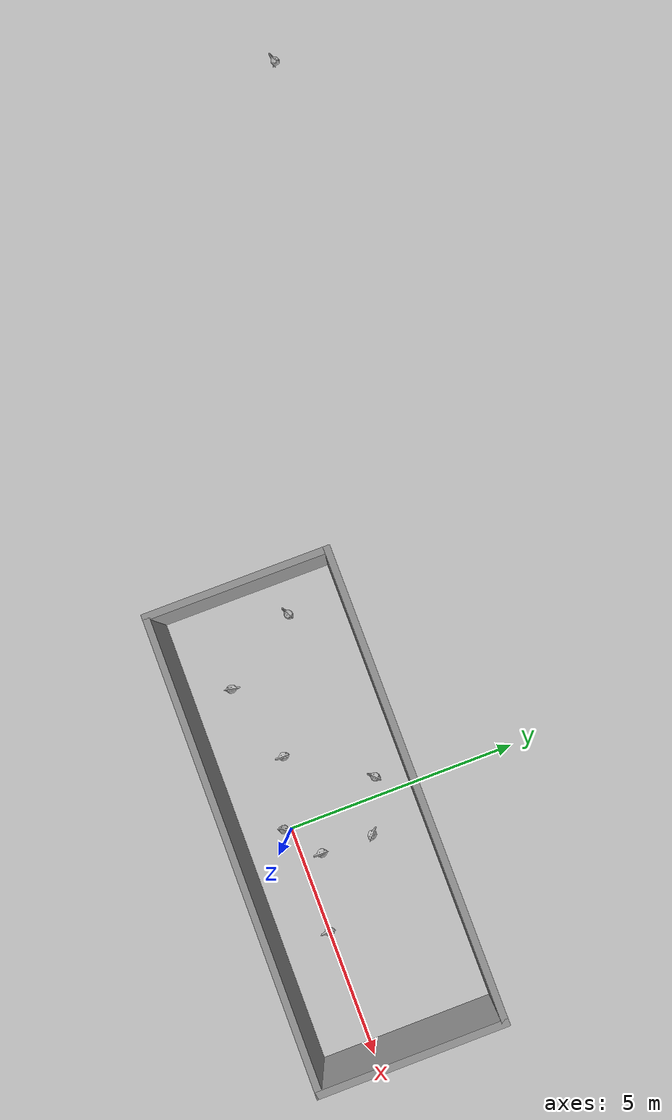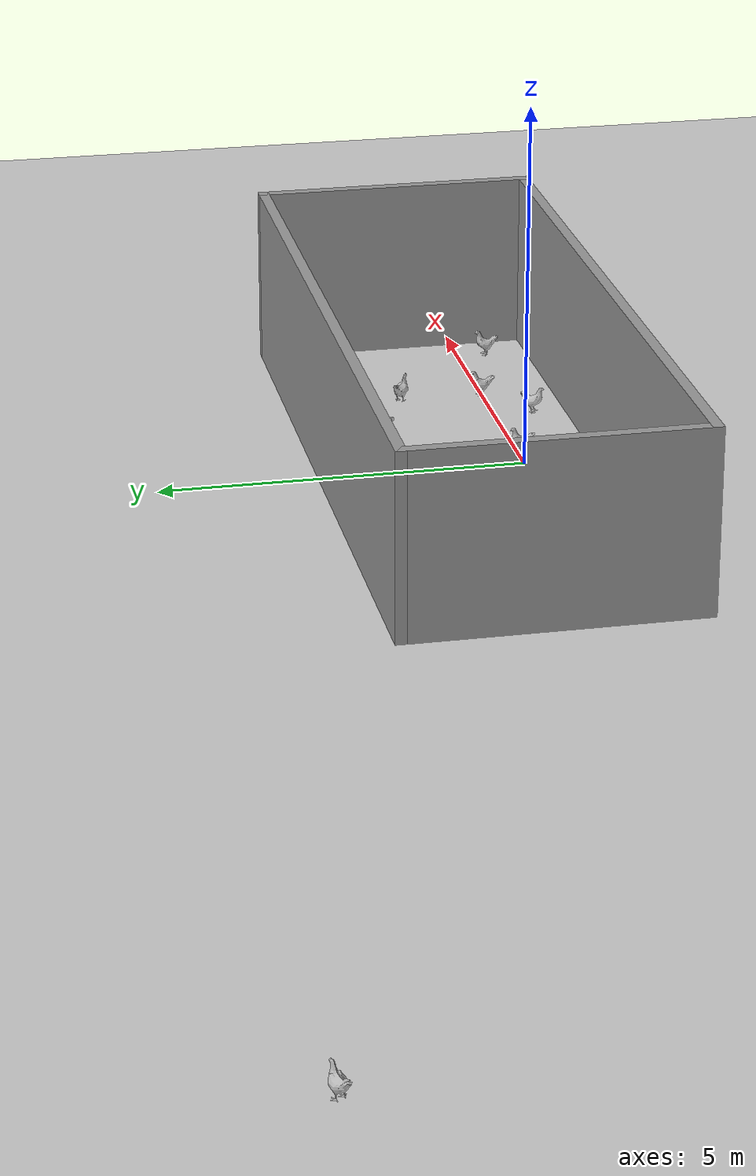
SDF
<sdf version="1.7">
 <world name="default">
  <model name="ground_plane">
   <static>1</static>
   <link name="link">
    <collision name="collision">
     <geometry><plane><normal>0 0 1</normal><size>100 100</size></plane></geometry>
     <surface><friction><ode><mu>100</mu><mu2>50</mu2></ode></friction></surface>
    </collision>
    <visual name="visual">
     <cast_shadows>0</cast_shadows>
     <geometry><plane><normal>0 0 1</normal><size>100 100</size></plane></geometry>
     <material>
      <script><uri>file://media/materials/scripts/gazebo.material</uri><name>Gazebo/Grey</name></script>
     </material>
    </visual>
   </link>
  </model>
  <light name="sun" type="directional">
   <pose>0 0 10 0 -0 0</pose>
   <diffuse>0.8 0.8 0.8 1</diffuse>
   <specular>0.2 0.2 0.2 1</specular>
   <attenuation>
    <range>1000</range>
    <constant>0.9</constant>
    <linear>0.01</linear>
    <quadratic>0.001</quadratic>
   </attenuation>
   <direction>-0.5 0.1 -0.9</direction>
   <spot><inner_angle>0</inner_angle><outer_angle>0</outer_angle><falloff>0</falloff></spot>
  </light>
  <gravity>0 0 -9.8</gravity>
  <magnetic_field>6e-06 2.3e-05 -4.2e-05</magnetic_field>
  <atmosphere type="adiabatic"/>
  <physics type="ode">
   <max_step_size>0.001</max_step_size>
   <real_time_factor>1</real_time_factor>
   <real_time_update_rate>1000</real_time_update_rate>
  </physics>
  <scene><ambient>0.4 0.4 0.4 1</ambient><background>0.7 0.7 0.7 1</background><shadows>1</shadows></scene>
  <audio><device>default</device></audio>
  <spherical_coordinates>
   <surface_model>EARTH_WGS84</surface_model>
   <latitude_deg>0</latitude_deg>
   <longitude_deg>0</longitude_deg>
   <elevation>0</elevation>
   <heading_deg>0</heading_deg>
  </spherical_coordinates>
  <model name="Stall4x10">
   <pose>1.16004 0.83872 0 0 -0 0</pose>
   <link name="Wall_6">
    <collision name="Wall_6_Collision">
     <geometry><box><size>4 0.15 2.5</size></box></geometry>
     <pose>0 0 1.25 0 -0 0</pose>
    </collision>
    <visual name="Wall_6_Visual">
     <pose>0 0 1.25 0 -0 0</pose>
     <geometry><box><size>4 0.15 2.5</size></box></geometry>
     <material>
      <script><uri>file://media/materials/scripts/gazebo.material</uri><name>Gazebo/Grey</name></script>
      <ambient>1 1 1 1</ambient>
     </material>
     <meta><layer>0</layer></meta>
    </visual>
    <pose>-6.2376 -0 0 0 -0 -1.5708</pose>
   </link>
   <link name="Wall_7">
    <collision name="Wall_7_Collision">
     <geometry><box><size>10 0.15 2.5</size></box></geometry>
     <pose>0 0 1.25 0 -0 0</pose>
    </collision>
    <visual name="Wall_7_Visual">
     <pose>0 0 1.25 0 -0 0</pose>
     <geometry><box><size>10 0.15 2.5</size></box></geometry>
     <material>
      <script><uri>file://media/materials/scripts/gazebo.material</uri><name>Gazebo/Grey</name></script>
      <ambient>1 1 1 1</ambient>
     </material>
     <meta><layer>0</layer></meta>
    </visual>
    <pose>-1.3126 -1.925 0 0 -0 0</pose>
   </link>
   <link name="Wall_8">
    <collision name="Wall_8_Collision">
     <geometry><box><size>4 0.15 2.5</size></box></geometry>
     <pose>0 0 1.25 0 -0 0</pose>
    </collision>
    <visual name="Wall_8_Visual">
     <pose>0 0 1.25 0 -0 0</pose>
     <geometry><box><size>4 0.15 2.5</size></box></geometry>
     <material>
      <script><uri>file://media/materials/scripts/gazebo.material</uri><name>Gazebo/Grey</name></script>
      <ambient>1 1 1 1</ambient>
     </material>
     <meta><layer>0</layer></meta>
    </visual>
    <pose>3.6124 -0 0 0 -0 1.5708</pose>
   </link>
   <link name="Wall_9">
    <collision name="Wall_9_Collision">
     <geometry><box><size>10 0.15 2.5</size></box></geometry>
     <pose>0 0 1.25 0 -0 0</pose>
    </collision>
    <visual name="Wall_9_Visual">
     <pose>0 0 1.25 0 -0 0</pose>
     <geometry><box><size>10 0.15 2.5</size></box></geometry>
     <material>
      <script><uri>file://media/materials/scripts/gazebo.material</uri><name>Gazebo/Grey</name></script>
      <ambient>1 1 1 1</ambient>
     </material>
     <meta><layer>0</layer></meta>
    </visual>
    <pose>-1.3126 1.925 0 0 -0 3.14159</pose>
   </link>
   <static>1</static>
  </model>
  <model name="Chicken">
   <static>1</static>
   <link name="link">
    <collision name="collision">
     <geometry><cylinder><radius>50</radius><length>50</length></cylinder></geometry>
    </collision>
    <visual name="visual"><geometry><mesh><uri>model://Chicken/meshes/Chicken.dae</uri></mesh></geometry></visual>
   </link>
   <pose>2.16393 0.019569 0.804608 0 -0 0</pose>
  </model>
  <model name="Chicken_0">
   <static>1</static>
   <link name="link">
    <collision name="collision">
     <geometry><cylinder><radius>50</radius><length>50</length></cylinder></geometry>
    </collision>
    <visual name="visual"><geometry><mesh><uri>model://Chicken/meshes/Chicken.dae</uri></mesh></geometry></visual>
   </link>
   <pose>-0.486125 2.01873 0.802451 0 0 -0.772379</pose>
  </model>
  <model name="Chicken_1">
   <static>1</static>
   <link name="link">
    <collision name="collision">
     <geometry><cylinder><radius>50</radius><length>50</length></cylinder></geometry>
    </collision>
    <visual name="visual"><geometry><mesh><uri>model://Chicken/meshes/Chicken.dae</uri></mesh></geometry></visual>
   </link>
   <pose>-3.18201 -0.046634 0.817456 0 -0 2.96983</pose>
  </model>
  <model name="Chicken_2">
   <static>1</static>
   <link name="link">
    <collision name="collision">
     <geometry><cylinder><radius>50</radius><length>50</length></cylinder></geometry>
    </collision>
    <visual name="visual"><geometry><mesh><uri>model://Chicken/meshes/Chicken.dae</uri></mesh></geometry></visual>
   </link>
   <pose>-1.50862 0.381596 0.826145 0 -0 0</pose>
  </model>
  <model name="Chicken_3">
   <static>1</static>
   <link name="link">
    <collision name="collision">
     <geometry><cylinder><radius>50</radius><length>50</length></cylinder></geometry>
    </collision>
    <visual name="visual"><geometry><mesh><uri>model://Chicken/meshes/Chicken.dae</uri></mesh></geometry></visual>
   </link>
   <pose>-0.072815 -0.038557 0.814274 0 -0 2.57247</pose>
  </model>
  <model name="Chicken_4">
   <static>1</static>
   <link name="link">
    <collision name="collision">
     <geometry><cylinder><radius>50</radius><length>50</length></cylinder></geometry>
    </collision>
    <visual name="visual"><geometry><mesh><uri>model://Chicken/meshes/Chicken.dae</uri></mesh></geometry></visual>
   </link>
   <pose>0.621536 0.429611 0.816262 0 -0 0</pose>
  </model>
  <model name="Chicken_5">
   <static>1</static>
   <link name="link">
    <collision name="collision">
     <geometry><cylinder><radius>50</radius><length>50</length></cylinder></geometry>
    </collision>
    <visual name="visual"><geometry><mesh><uri>model://Chicken/meshes/Chicken.dae</uri></mesh></geometry></visual>
   </link>
   <pose>0.601318 1.61826 0.81115 0 0 -2.3272</pose>
  </model>
  <model name="Chicken_6">
   <static>1</static>
   <link name="link">
    <collision name="collision">
     <geometry><cylinder><radius>50</radius><length>50</length></cylinder></geometry>
    </collision>
    <visual name="visual"><geometry><mesh><uri>model://Chicken/meshes/Chicken.dae</uri></mesh></geometry></visual>
   </link>
   <pose>-4.27843 1.52763 0.814666 0 0 -1.1254</pose>
  </model>
  <model name="Chicken_6_clone">
   <static>1</static>
   <link name="link">
    <collision name="collision">
     <geometry><cylinder><radius>50</radius><length>50</length></cylinder></geometry>
    </collision>
    <visual name="visual"><geometry><mesh><uri>model://Chicken/meshes/Chicken.dae</uri></mesh></geometry></visual>
   </link>
   <pose>-15.5903 5.42213 0.814666 0 0 -1.1254</pose>
  </model>
 </world>
</sdf>
